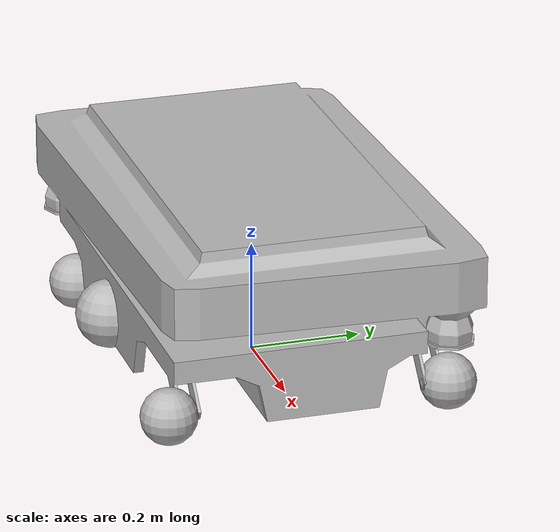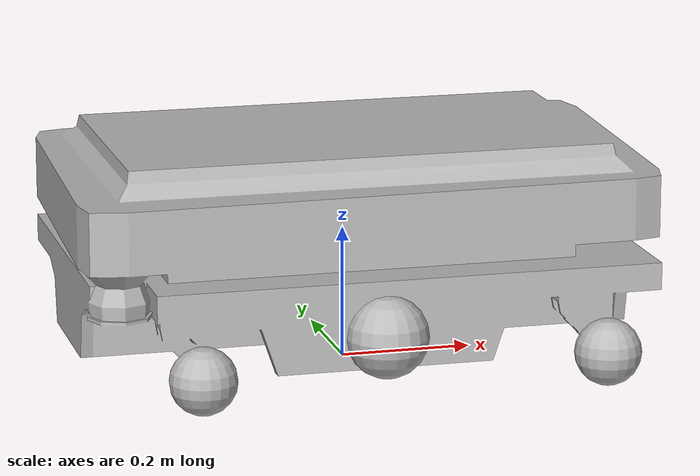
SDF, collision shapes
<?xml version="1.0"?>

<sdf version="1.6">
  <model name='DeliveryRobot'>

    <!-- TODO(MXG): Find actual physical properties for DeliveryRobot -->
    <plugin name="slotcar" filename="libslotcar.so">

      <!-- Forward / Backward -->
      <nominal_drive_speed>0.7</nominal_drive_speed>
      <nominal_drive_acceleration>0.5</nominal_drive_acceleration>
      <!-- Theoretical no-slip limit with current suspension: 0.8 -->
      <max_drive_acceleration>0.75</max_drive_acceleration>

      <!-- Turning -->
      <nominal_turn_speed>0.6</nominal_turn_speed>
      <nominal_turn_acceleration>1.5</nominal_turn_acceleration>
      <!-- Theoretical no-slip limit with current suspension: 2.166666... -->
      <max_turn_acceleration>2.0</max_turn_acceleration>

      <stop_distance>0.75</stop_distance>
      <stop_radius>0.75</stop_radius>

      <!-- Can the robot drive backwards -->
      <reversible>true</reversible>

      <!-- Coordinate systems -->
      <crs>
        <cartesian_crs>EPSG:3414</cartesian_crs> <!-- cartesian coordinate robot is operating in -->
        <robot_state_crs>EPSG:4326</robot_state_crs> <!-- coordinates published in /gps_robot_state -->
      </crs>

      <!-- Battery params -->
      <nominal_voltage>24.0</nominal_voltage>
      <nominal_capacity>40.0</nominal_capacity>
      <charging_current>8.8</charging_current>

      <!-- Physical params -->
      <mass>70.0</mass>
      <inertia>40.0</inertia>
      <friction_coefficient>0.22</friction_coefficient>

      <!-- Power systems -->
      <nominal_power>20.0</nominal_power>

    </plugin>

    <link name="body">
      <pose>0 0 0 0 0 -1.57</pose>

      <inertial>
        <pose>0 0 0.201 0 0 0</pose>
        <mass>70</mass>
        <inertia>
          <ixx>5.1526</ixx>
          <iyy>2.4944</iyy>
          <izz>6.2829</izz>
        </inertia>
      </inertial>

      <visual name="body_visual">
        <geometry>
          <mesh><uri>model://DeliveryRobot/meshes/body.obj</uri></mesh>
        </geometry>
      </visual>
      <collision name="body_collision">
        <geometry>
          <mesh><uri>model://DeliveryRobot/meshes/body.obj</uri></mesh>
        </geometry>
      </collision>

      <visual name="WheelLeftFront">
        <pose>-0.220 -0.262 0.061 0 0 0</pose>
        <geometry>
          <mesh>
            <uri>model://DeliveryRobot/meshes/WheelMain.obj</uri>
          </mesh>
        </geometry>
      </visual>
      <collision name="front_caster_left">
        <pose>-.25 -.27 0.05 0 0 0</pose>
        <geometry>
          <sphere><radius>0.05</radius></sphere>
        </geometry>
        <surface>
          <friction>
            <torsional>
              <coefficient>0.0</coefficient>
            </torsional>
            <ode>
              <mu>0.0</mu>
              <mu2>0.0</mu2>
            </ode>
            <bullet>
              <friction>0.0</friction>
              <friction2>0.0</friction2>
              <rolling_friction>0.0</rolling_friction>
            </bullet>
          </friction>
        </surface>
      </collision>

      <visual name="WheelLeftBack">
        <pose>-0.220 0.334 0.061 0 0 0</pose>
        <geometry>
          <mesh>
            <uri>model://DeliveryRobot/meshes/WheelMain.obj</uri>
          </mesh>
        </geometry>
      </visual>
      <collision name="back_caster_left">
        <pose>-.25 .34 0.05 0 0 0</pose>
        <geometry>
          <sphere><radius>0.05</radius></sphere>
        </geometry>
        <surface>
          <friction>
            <torsional>
              <coefficient>0.0</coefficient>
            </torsional>
            <ode>
              <mu>0.0</mu>
              <mu2>0.0</mu2>
            </ode>
            <bullet>
              <friction>0.0</friction>
              <friction2>0.0</friction2>
              <rolling_friction>0.0</rolling_friction>
            </bullet>
          </friction>
        </surface>
      </collision>

      <visual name="WheelRightFront">
        <pose>0.217 -0.262 0.061 0 0 0</pose>
        <geometry>
          <mesh>
            <uri>model://DeliveryRobot/meshes/WheelMain.obj</uri>
          </mesh>
        </geometry>
      </visual>
      <collision name="front_caster_right">
        <pose>.25 -.27 0.05 0 0 0</pose>
        <geometry>
          <sphere><radius>0.05</radius></sphere>
        </geometry>
        <surface>
          <friction>
            <torsional>
              <coefficient>0.0</coefficient>
            </torsional>
            <ode>
              <mu>0.0</mu>
              <mu2>0.0</mu2>
            </ode>
            <bullet>
              <friction>0.0</friction>
              <friction2>0.0</friction2>
              <rolling_friction>0.0</rolling_friction>
            </bullet>
          </friction>
        </surface>
      </collision>

      <visual name="WheelRightBack">
        <pose>0.217 0.334 0.061 0 0 0</pose>
        <geometry>
          <mesh>
            <uri>model://DeliveryRobot/meshes/WheelMain.obj</uri>
          </mesh>
        </geometry>
      </visual>
      <collision name="back_caster_right">
        <pose>.25 .34 0.05 0 0 0</pose>
        <geometry>
          <sphere><radius>0.05</radius></sphere>
        </geometry>
        <surface>
          <friction>
            <torsional>
              <coefficient>0.0</coefficient>
            </torsional>
            <ode>
              <mu>0.0</mu>
              <mu2>0.0</mu2>
            </ode>
            <bullet>
              <friction>0.0</friction>
              <friction2>0.0</friction2>
              <rolling_friction>0.0</rolling_friction>
            </bullet>
          </friction>
        </surface>
      </collision>
    </link>

    <link name="suspension_tire_left">
      <!-- This is a dummy link that's used to connect a suspension (prismatic
           joint) to the tire axis (revolute joint) -->
      <pose>0 0.26 0.10 0 0 0</pose>
      <inertial>
        <mass>1.00</mass>
        <inertia>
          <ixx>1.00</ixx>
          <iyy>1.00</iyy>
          <izz>1.00</izz>
        </inertia>
      </inertial>
    </link>

    <joint name="joint_suspension_tire_left" type="prismatic">
      <parent>body</parent>
      <child>suspension_tire_left</child>
      <axis>
        <xyz>0 0 1</xyz>
        <dynamics>
          <damping>500</damping>
          <spring_reference>-0.09</spring_reference>
          <spring_stiffness>2000</spring_stiffness>
        </dynamics>
      </axis>
      <physics>
        <ode>
          <implicit_spring_damper>true</implicit_spring_damper>
        </ode>
      </physics>
    </joint>

    <link name="tire_left">
      <pose>0 0.26 0.10 0 0 0</pose>

      <inertial>
        <pose>0 0 0 0 0 0</pose>
        <mass>5.0</mass>
        <inertia>
          <ixx>0.757897446874</ixx>
          <iyy>1.302975553365</iyy>
          <izz>0.757897446874</izz>
        </inertia>
      </inertial>

      <visual name="WheelSideLeft">
        <pose>0 0.0 0.0 0 0 -1.57</pose>
        <geometry>
          <mesh>
            <uri>model://DeliveryRobot/meshes/WheelSide.obj</uri>
          </mesh>
        </geometry>
      </visual>
      <collision name="tire_left">
        <geometry>
          <sphere><radius>0.06137</radius></sphere>
        </geometry>
        <surface>
          <contact>
            <ode>
              <kp>10000000.0</kp>
              <kd>1.0</kd>
            </ode>
          </contact>
        </surface>
      </collision>
    </link>

    <joint name="joint_tire_left" type="revolute">
      <parent>suspension_tire_left</parent>
      <child>tire_left</child>
      <axis>
        <xyz>0 1 0</xyz>
      </axis>
    </joint>

    <link name="suspension_tire_right">
      <!-- This is a dummy link that's used to connect a suspension (prismatic
           joint) to the tire axis (revolute joint) -->
      <pose>0 -0.26 0.10 0 0 0</pose>
      <inertial>
        <mass>1.00</mass>
        <inertia>
          <ixx>1.00</ixx>
          <iyy>1.00</iyy>
          <izz>1.00</izz>
        </inertia>
      </inertial>
    </link>

    <joint name="joint_suspension_tire_right" type="prismatic">
      <parent>body</parent>
      <child>suspension_tire_right</child>
      <axis>
        <xyz>0 0 1</xyz>
        <dynamics>
          <damping>500</damping>
          <spring_reference>-0.09</spring_reference>
          <spring_stiffness>2000</spring_stiffness>
        </dynamics>
      </axis>
      <physics>
        <ode>
          <implicit_spring_damper>true</implicit_spring_damper>
        </ode>
      </physics>
    </joint>

    <link name="tire_right">
      <pose>0 -0.26 0.10 0 0 0</pose>

      <inertial>
        <pose>0 0 0 0 0 0</pose>
        <mass>5.0</mass>
        <inertia>
          <ixx>0.757897446874</ixx>
          <iyy>1.302975553365</iyy>
          <izz>0.757897446874</izz>
        </inertia>
      </inertial>

      <visual name="WheelSideRight">
        <pose>0 0.0 0.0 0 0 -1.57</pose>
        <geometry>
          <mesh>
            <uri>model://DeliveryRobot/meshes/WheelSide.obj</uri>
          </mesh>
        </geometry>
      </visual>
      <collision name="tire_right">
        <geometry>
          <sphere><radius>0.06137</radius></sphere>
        </geometry>
        <surface>
          <contact>
            <ode>
              <kp>10000000.0</kp>
              <kd>1.0</kd>
            </ode>
          </contact>
        </surface>
      </collision>
    </link>

    <joint name="joint_tire_right" type="revolute">
      <parent>suspension_tire_right</parent>
      <child>tire_right</child>
      <axis>
        <xyz>0 1 0</xyz>
      </axis>
    </joint>

  </model>
</sdf>
